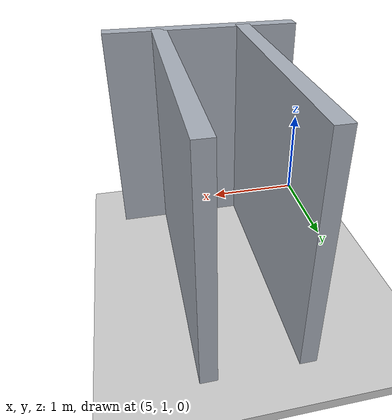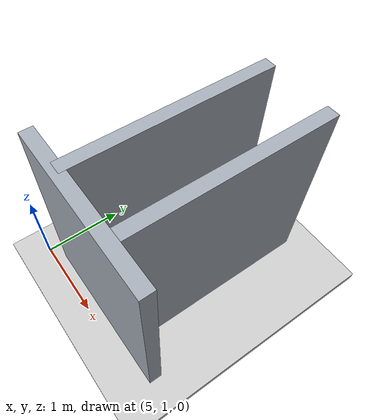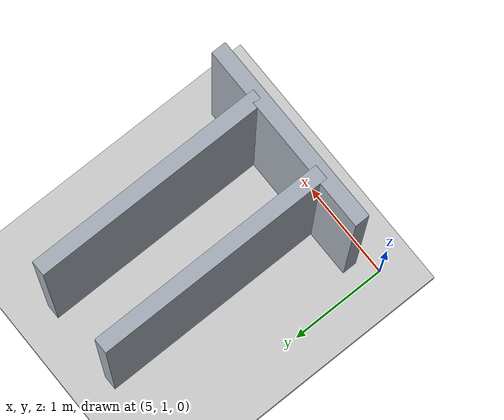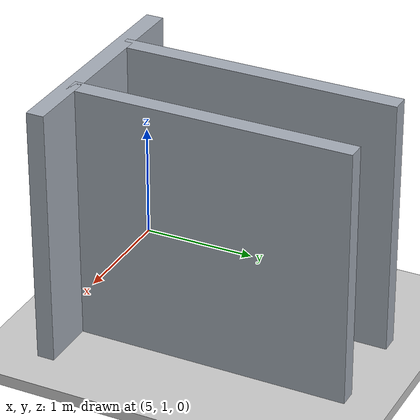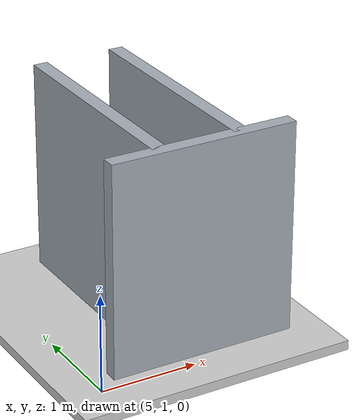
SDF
<sdf version="1.9">
 <world name="default">
  <model name="ground_plane">
   <static>true</static>
   <pose>4.95 0 -0.05 0 0 0</pose>
   <link name="body">
    <collision name="collision"><geometry><box><size>13.9 12 0.1</size></box></geometry></collision>
    <visual name="visual">
     <geometry><box><size>13.9 12 0.1</size></box></geometry>
     <material><ambient>0.8 0.8 0.8 1</ambient><diffuse>0.8 0.8 0.8 1</diffuse></material>
    </visual>
   </link>
  </model>
  <model name="room_1_1_1">
   <static>true</static>
   <pose>5.75 2.4 1.1 0 0 0</pose>
   <link name="body">
    <collision name="collision"><geometry><box><size>0.15 2.4 2.2</size></box></geometry></collision>
    <visual name="visual">
     <geometry><box><size>0.15 2.4 2.2</size></box></geometry>
     <material><ambient>0.65 0.68 0.72 1</ambient><diffuse>0.65 0.68 0.72 1</diffuse></material>
    </visual>
   </link>
  </model>
  <model name="hall_1_2">
   <static>true</static>
   <pose>6.175000000000001 1.2 1.1 0 0 0</pose>
   <link name="body">
    <collision name="collision">
     <geometry><box><size>1.9500000000000002 0.15 2.2</size></box></geometry>
    </collision>
    <visual name="visual">
     <geometry><box><size>1.9500000000000002 0.15 2.2</size></box></geometry>
     <material><ambient>0.65 0.68 0.72 1</ambient><diffuse>0.65 0.68 0.72 1</diffuse></material>
    </visual>
   </link>
  </model>
  <model name="room_1_2_-1">
   <static>true</static>
   <pose>6.6000000000000005 2.4 1.1 0 0 0</pose>
   <link name="body">
    <collision name="collision"><geometry><box><size>0.15 2.4 2.2</size></box></geometry></collision>
    <visual name="visual">
     <geometry><box><size>0.15 2.4 2.2</size></box></geometry>
     <material><ambient>0.65 0.68 0.72 1</ambient><diffuse>0.65 0.68 0.72 1</diffuse></material>
    </visual>
   </link>
  </model>
 </world>
</sdf>
